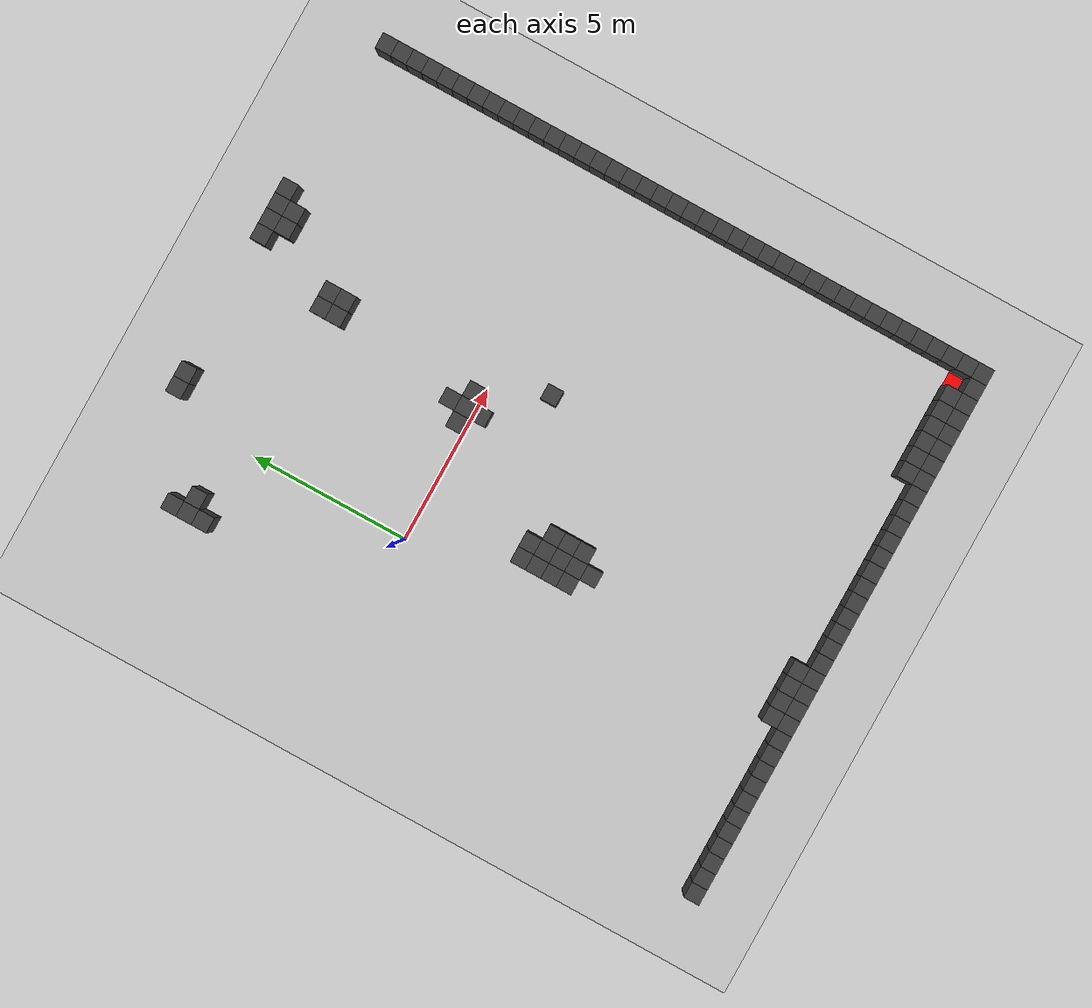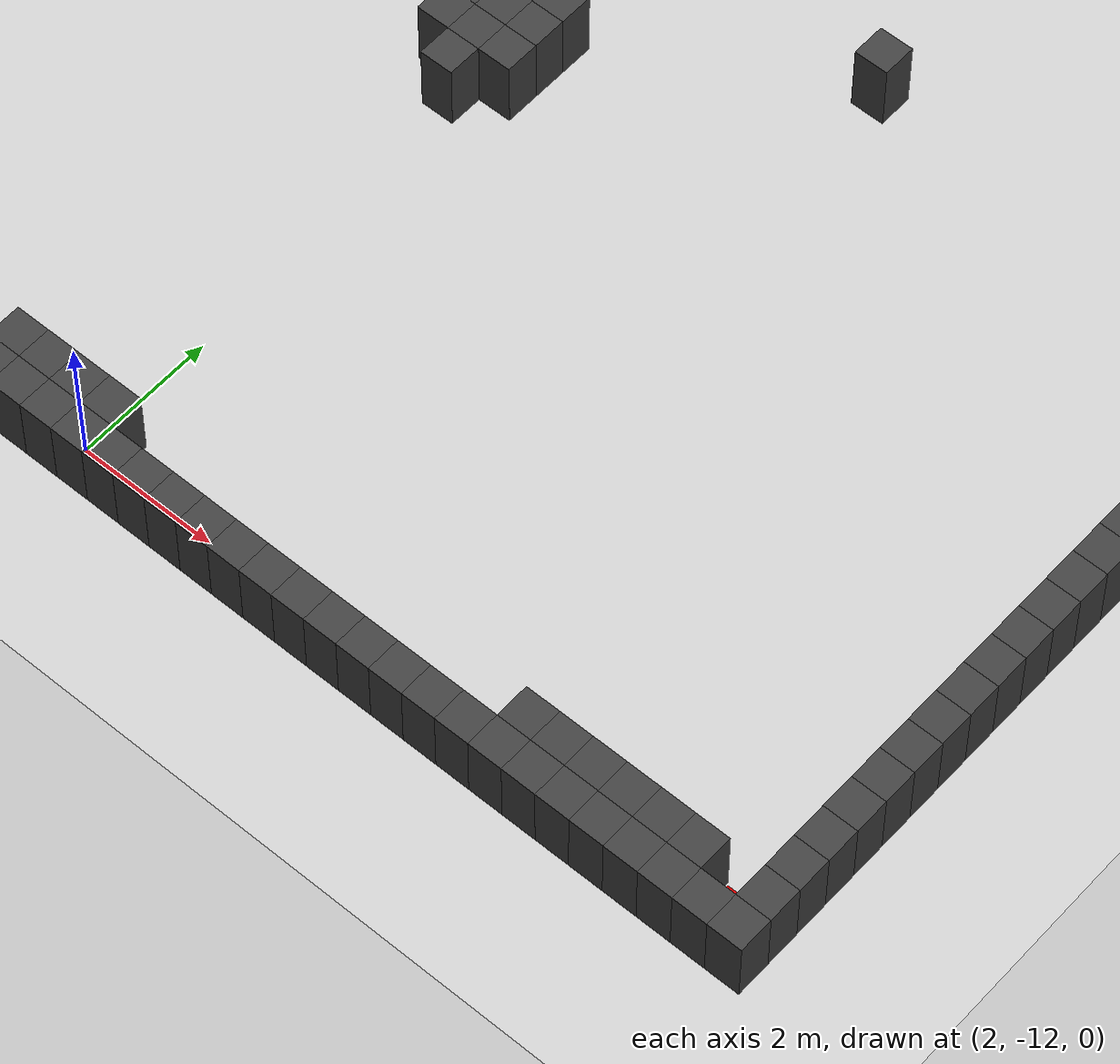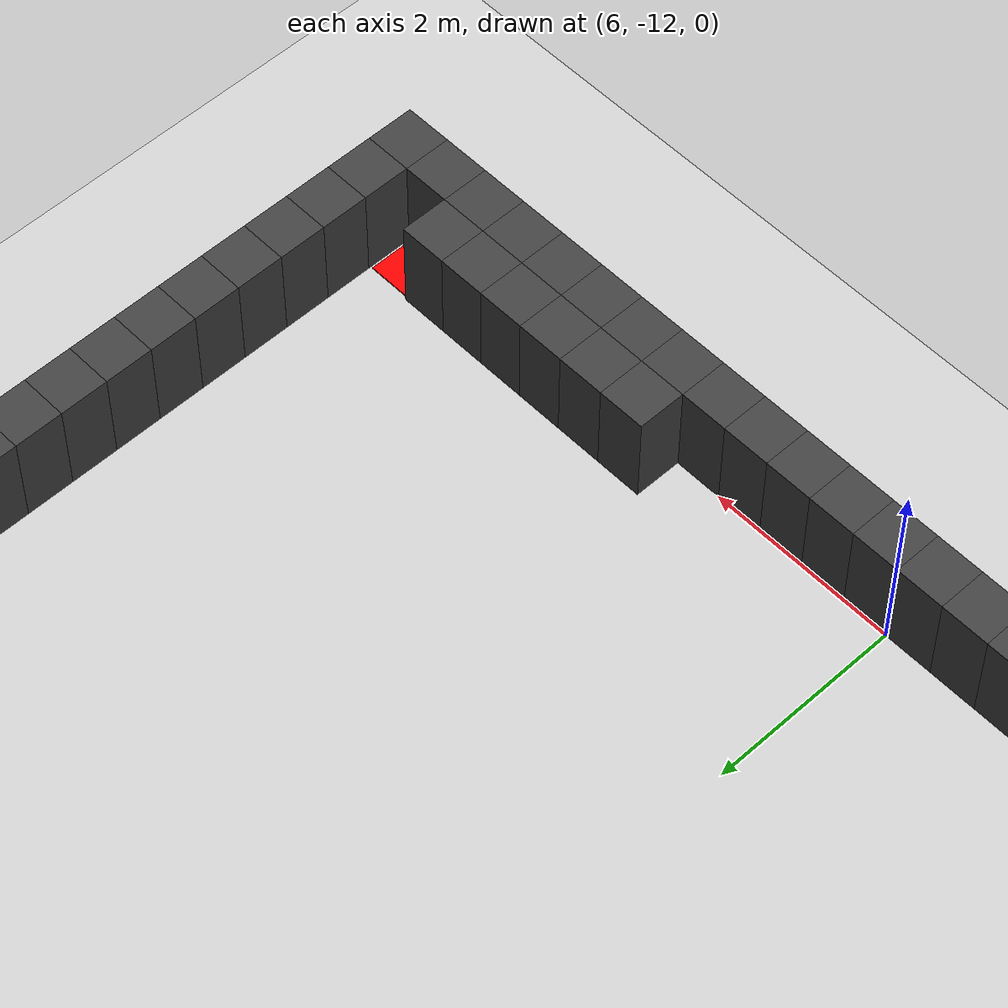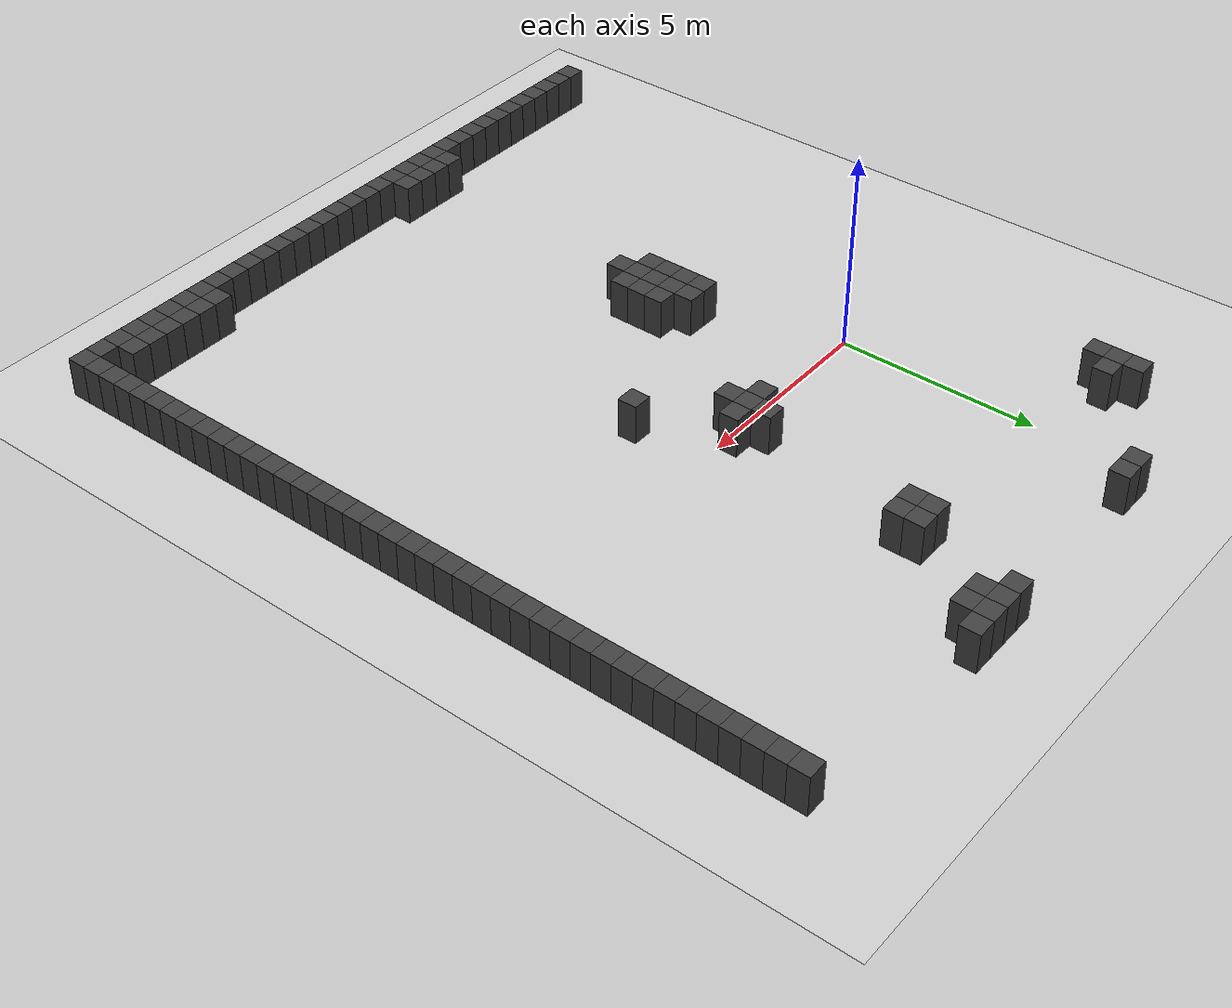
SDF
<sdf version="1.7">
 <world name="map_5837">
  <model name="ground_plane">
   <static>true</static>
   <link name="link">
    <collision name="collision">
     <geometry><plane><normal>0 0 1</normal><size>200 200</size></plane></geometry>
    </collision>
    <visual name="visual">
     <geometry><plane><normal>0 0 1</normal><size>200 200</size></plane></geometry>
     <material><ambient>0.8 0.8 0.8 1</ambient><diffuse>0.8 0.8 0.8 1</diffuse></material>
    </visual>
   </link>
  </model>
  <model name="maze_environment">
   <static>true</static>
   <link name="wall_169">
    <pose>0.750 7.750 0.500 0 0 0</pose>
    <collision name="col"><geometry><box><size>0.5 0.5 1.0</size></box></geometry></collision>
    <visual name="vis">
     <geometry><box><size>0.5 0.5 1.0</size></box></geometry>
     <material><ambient>0.15 0.15 0.15 1</ambient><diffuse>0.25 0.25 0.25 1</diffuse></material>
    </visual>
   </link>
   <link name="wall_170">
    <pose>1.250 7.750 0.500 0 0 0</pose>
    <collision name="col"><geometry><box><size>0.5 0.5 1.0</size></box></geometry></collision>
    <visual name="vis">
     <geometry><box><size>0.5 0.5 1.0</size></box></geometry>
     <material><ambient>0.15 0.15 0.15 1</ambient><diffuse>0.25 0.25 0.25 1</diffuse></material>
    </visual>
   </link>
   <link name="wall_171">
    <pose>5.750 7.750 0.500 0 0 0</pose>
    <collision name="col"><geometry><box><size>0.5 0.5 1.0</size></box></geometry></collision>
    <visual name="vis">
     <geometry><box><size>0.5 0.5 1.0</size></box></geometry>
     <material><ambient>0.15 0.15 0.15 1</ambient><diffuse>0.25 0.25 0.25 1</diffuse></material>
    </visual>
   </link>
   <link name="wall_172">
    <pose>6.250 7.750 0.500 0 0 0</pose>
    <collision name="col"><geometry><box><size>0.5 0.5 1.0</size></box></geometry></collision>
    <visual name="vis">
     <geometry><box><size>0.5 0.5 1.0</size></box></geometry>
     <material><ambient>0.15 0.15 0.15 1</ambient><diffuse>0.25 0.25 0.25 1</diffuse></material>
    </visual>
   </link>
   <link name="wall_173">
    <pose>6.750 7.750 0.500 0 0 0</pose>
    <collision name="col"><geometry><box><size>0.5 0.5 1.0</size></box></geometry></collision>
    <visual name="vis">
     <geometry><box><size>0.5 0.5 1.0</size></box></geometry>
     <material><ambient>0.15 0.15 0.15 1</ambient><diffuse>0.25 0.25 0.25 1</diffuse></material>
    </visual>
   </link>
   <link name="wall_174">
    <pose>7.250 7.750 0.500 0 0 0</pose>
    <collision name="col"><geometry><box><size>0.5 0.5 1.0</size></box></geometry></collision>
    <visual name="vis">
     <geometry><box><size>0.5 0.5 1.0</size></box></geometry>
     <material><ambient>0.15 0.15 0.15 1</ambient><diffuse>0.25 0.25 0.25 1</diffuse></material>
    </visual>
   </link>
   <link name="wall_177">
    <pose>6.250 7.250 0.500 0 0 0</pose>
    <collision name="col"><geometry><box><size>0.5 0.5 1.0</size></box></geometry></collision>
    <visual name="vis">
     <geometry><box><size>0.5 0.5 1.0</size></box></geometry>
     <material><ambient>0.15 0.15 0.15 1</ambient><diffuse>0.25 0.25 0.25 1</diffuse></material>
    </visual>
   </link>
   <link name="wall_178">
    <pose>6.750 7.250 0.500 0 0 0</pose>
    <collision name="col"><geometry><box><size>0.5 0.5 1.0</size></box></geometry></collision>
    <visual name="vis">
     <geometry><box><size>0.5 0.5 1.0</size></box></geometry>
     <material><ambient>0.15 0.15 0.15 1</ambient><diffuse>0.25 0.25 0.25 1</diffuse></material>
    </visual>
   </link>
   <link name="wall_179">
    <pose>12.250 7.250 0.500 0 0 0</pose>
    <collision name="col"><geometry><box><size>0.5 0.5 1.0</size></box></geometry></collision>
    <visual name="vis">
     <geometry><box><size>0.5 0.5 1.0</size></box></geometry>
     <material><ambient>0.15 0.15 0.15 1</ambient><diffuse>0.25 0.25 0.25 1</diffuse></material>
    </visual>
   </link>
   <link name="wall_181">
    <pose>12.250 6.750 0.500 0 0 0</pose>
    <collision name="col"><geometry><box><size>0.5 0.5 1.0</size></box></geometry></collision>
    <visual name="vis">
     <geometry><box><size>0.5 0.5 1.0</size></box></geometry>
     <material><ambient>0.15 0.15 0.15 1</ambient><diffuse>0.25 0.25 0.25 1</diffuse></material>
    </visual>
   </link>
   <link name="wall_183">
    <pose>-2.250 6.250 0.500 0 0 0</pose>
    <collision name="col"><geometry><box><size>0.5 0.5 1.0</size></box></geometry></collision>
    <visual name="vis">
     <geometry><box><size>0.5 0.5 1.0</size></box></geometry>
     <material><ambient>0.15 0.15 0.15 1</ambient><diffuse>0.25 0.25 0.25 1</diffuse></material>
    </visual>
   </link>
   <link name="wall_184">
    <pose>12.250 6.250 0.500 0 0 0</pose>
    <collision name="col"><geometry><box><size>0.5 0.5 1.0</size></box></geometry></collision>
    <visual name="vis">
     <geometry><box><size>0.5 0.5 1.0</size></box></geometry>
     <material><ambient>0.15 0.15 0.15 1</ambient><diffuse>0.25 0.25 0.25 1</diffuse></material>
    </visual>
   </link>
   <link name="wall_186">
    <pose>-2.250 5.750 0.500 0 0 0</pose>
    <collision name="col"><geometry><box><size>0.5 0.5 1.0</size></box></geometry></collision>
    <visual name="vis">
     <geometry><box><size>0.5 0.5 1.0</size></box></geometry>
     <material><ambient>0.15 0.15 0.15 1</ambient><diffuse>0.25 0.25 0.25 1</diffuse></material>
    </visual>
   </link>
   <link name="wall_187">
    <pose>-1.750 5.750 0.500 0 0 0</pose>
    <collision name="col"><geometry><box><size>0.5 0.5 1.0</size></box></geometry></collision>
    <visual name="vis">
     <geometry><box><size>0.5 0.5 1.0</size></box></geometry>
     <material><ambient>0.15 0.15 0.15 1</ambient><diffuse>0.25 0.25 0.25 1</diffuse></material>
    </visual>
   </link>
   <link name="wall_188">
    <pose>12.250 5.750 0.500 0 0 0</pose>
    <collision name="col"><geometry><box><size>0.5 0.5 1.0</size></box></geometry></collision>
    <visual name="vis">
     <geometry><box><size>0.5 0.5 1.0</size></box></geometry>
     <material><ambient>0.15 0.15 0.15 1</ambient><diffuse>0.25 0.25 0.25 1</diffuse></material>
    </visual>
   </link>
   <link name="wall_190">
    <pose>-2.250 5.250 0.500 0 0 0</pose>
    <collision name="col"><geometry><box><size>0.5 0.5 1.0</size></box></geometry></collision>
    <visual name="vis">
     <geometry><box><size>0.5 0.5 1.0</size></box></geometry>
     <material><ambient>0.15 0.15 0.15 1</ambient><diffuse>0.25 0.25 0.25 1</diffuse></material>
    </visual>
   </link>
   <link name="wall_191">
    <pose>4.750 5.250 0.500 0 0 0</pose>
    <collision name="col"><geometry><box><size>0.5 0.5 1.0</size></box></geometry></collision>
    <visual name="vis">
     <geometry><box><size>0.5 0.5 1.0</size></box></geometry>
     <material><ambient>0.15 0.15 0.15 1</ambient><diffuse>0.25 0.25 0.25 1</diffuse></material>
    </visual>
   </link>
   <link name="wall_192">
    <pose>5.250 5.250 0.500 0 0 0</pose>
    <collision name="col"><geometry><box><size>0.5 0.5 1.0</size></box></geometry></collision>
    <visual name="vis">
     <geometry><box><size>0.5 0.5 1.0</size></box></geometry>
     <material><ambient>0.15 0.15 0.15 1</ambient><diffuse>0.25 0.25 0.25 1</diffuse></material>
    </visual>
   </link>
   <link name="wall_193">
    <pose>12.250 5.250 0.500 0 0 0</pose>
    <collision name="col"><geometry><box><size>0.5 0.5 1.0</size></box></geometry></collision>
    <visual name="vis">
     <geometry><box><size>0.5 0.5 1.0</size></box></geometry>
     <material><ambient>0.15 0.15 0.15 1</ambient><diffuse>0.25 0.25 0.25 1</diffuse></material>
    </visual>
   </link>
   <link name="wall_195">
    <pose>4.750 4.750 0.500 0 0 0</pose>
    <collision name="col"><geometry><box><size>0.5 0.5 1.0</size></box></geometry></collision>
    <visual name="vis">
     <geometry><box><size>0.5 0.5 1.0</size></box></geometry>
     <material><ambient>0.15 0.15 0.15 1</ambient><diffuse>0.25 0.25 0.25 1</diffuse></material>
    </visual>
   </link>
   <link name="wall_196">
    <pose>5.250 4.750 0.500 0 0 0</pose>
    <collision name="col"><geometry><box><size>0.5 0.5 1.0</size></box></geometry></collision>
    <visual name="vis">
     <geometry><box><size>0.5 0.5 1.0</size></box></geometry>
     <material><ambient>0.15 0.15 0.15 1</ambient><diffuse>0.25 0.25 0.25 1</diffuse></material>
    </visual>
   </link>
   <link name="wall_197">
    <pose>12.250 4.750 0.500 0 0 0</pose>
    <collision name="col"><geometry><box><size>0.5 0.5 1.0</size></box></geometry></collision>
    <visual name="vis">
     <geometry><box><size>0.5 0.5 1.0</size></box></geometry>
     <material><ambient>0.15 0.15 0.15 1</ambient><diffuse>0.25 0.25 0.25 1</diffuse></material>
    </visual>
   </link>
   <link name="wall_199">
    <pose>12.250 4.250 0.500 0 0 0</pose>
    <collision name="col"><geometry><box><size>0.5 0.5 1.0</size></box></geometry></collision>
    <visual name="vis">
     <geometry><box><size>0.5 0.5 1.0</size></box></geometry>
     <material><ambient>0.15 0.15 0.15 1</ambient><diffuse>0.25 0.25 0.25 1</diffuse></material>
    </visual>
   </link>
   <link name="wall_201">
    <pose>12.250 3.750 0.500 0 0 0</pose>
    <collision name="col"><geometry><box><size>0.5 0.5 1.0</size></box></geometry></collision>
    <visual name="vis">
     <geometry><box><size>0.5 0.5 1.0</size></box></geometry>
     <material><ambient>0.15 0.15 0.15 1</ambient><diffuse>0.25 0.25 0.25 1</diffuse></material>
    </visual>
   </link>
   <link name="wall_203">
    <pose>12.250 3.250 0.500 0 0 0</pose>
    <collision name="col"><geometry><box><size>0.5 0.5 1.0</size></box></geometry></collision>
    <visual name="vis">
     <geometry><box><size>0.5 0.5 1.0</size></box></geometry>
     <material><ambient>0.15 0.15 0.15 1</ambient><diffuse>0.25 0.25 0.25 1</diffuse></material>
    </visual>
   </link>
   <link name="wall_205">
    <pose>12.250 2.750 0.500 0 0 0</pose>
    <collision name="col"><geometry><box><size>0.5 0.5 1.0</size></box></geometry></collision>
    <visual name="vis">
     <geometry><box><size>0.5 0.5 1.0</size></box></geometry>
     <material><ambient>0.15 0.15 0.15 1</ambient><diffuse>0.25 0.25 0.25 1</diffuse></material>
    </visual>
   </link>
   <link name="wall_207">
    <pose>12.250 2.250 0.500 0 0 0</pose>
    <collision name="col"><geometry><box><size>0.5 0.5 1.0</size></box></geometry></collision>
    <visual name="vis">
     <geometry><box><size>0.5 0.5 1.0</size></box></geometry>
     <material><ambient>0.15 0.15 0.15 1</ambient><diffuse>0.25 0.25 0.25 1</diffuse></material>
    </visual>
   </link>
   <link name="wall_209">
    <pose>12.250 1.750 0.500 0 0 0</pose>
    <collision name="col"><geometry><box><size>0.5 0.5 1.0</size></box></geometry></collision>
    <visual name="vis">
     <geometry><box><size>0.5 0.5 1.0</size></box></geometry>
     <material><ambient>0.15 0.15 0.15 1</ambient><diffuse>0.25 0.25 0.25 1</diffuse></material>
    </visual>
   </link>
   <link name="wall_211">
    <pose>12.250 1.250 0.500 0 0 0</pose>
    <collision name="col"><geometry><box><size>0.5 0.5 1.0</size></box></geometry></collision>
    <visual name="vis">
     <geometry><box><size>0.5 0.5 1.0</size></box></geometry>
     <material><ambient>0.15 0.15 0.15 1</ambient><diffuse>0.25 0.25 0.25 1</diffuse></material>
    </visual>
   </link>
   <link name="wall_213">
    <pose>4.250 0.750 0.500 0 0 0</pose>
    <collision name="col"><geometry><box><size>0.5 0.5 1.0</size></box></geometry></collision>
    <visual name="vis">
     <geometry><box><size>0.5 0.5 1.0</size></box></geometry>
     <material><ambient>0.15 0.15 0.15 1</ambient><diffuse>0.25 0.25 0.25 1</diffuse></material>
    </visual>
   </link>
   <link name="wall_214">
    <pose>12.250 0.750 0.500 0 0 0</pose>
    <collision name="col"><geometry><box><size>0.5 0.5 1.0</size></box></geometry></collision>
    <visual name="vis">
     <geometry><box><size>0.5 0.5 1.0</size></box></geometry>
     <material><ambient>0.15 0.15 0.15 1</ambient><diffuse>0.25 0.25 0.25 1</diffuse></material>
    </visual>
   </link>
   <link name="wall_216">
    <pose>3.750 0.250 0.500 0 0 0</pose>
    <collision name="col"><geometry><box><size>0.5 0.5 1.0</size></box></geometry></collision>
    <visual name="vis">
     <geometry><box><size>0.5 0.5 1.0</size></box></geometry>
     <material><ambient>0.15 0.15 0.15 1</ambient><diffuse>0.25 0.25 0.25 1</diffuse></material>
    </visual>
   </link>
   <link name="wall_217">
    <pose>4.250 0.250 0.500 0 0 0</pose>
    <collision name="col"><geometry><box><size>0.5 0.5 1.0</size></box></geometry></collision>
    <visual name="vis">
     <geometry><box><size>0.5 0.5 1.0</size></box></geometry>
     <material><ambient>0.15 0.15 0.15 1</ambient><diffuse>0.25 0.25 0.25 1</diffuse></material>
    </visual>
   </link>
   <link name="wall_218">
    <pose>4.750 0.250 0.500 0 0 0</pose>
    <collision name="col"><geometry><box><size>0.5 0.5 1.0</size></box></geometry></collision>
    <visual name="vis">
     <geometry><box><size>0.5 0.5 1.0</size></box></geometry>
     <material><ambient>0.15 0.15 0.15 1</ambient><diffuse>0.25 0.25 0.25 1</diffuse></material>
    </visual>
   </link>
   <link name="wall_219">
    <pose>12.250 0.250 0.500 0 0 0</pose>
    <collision name="col"><geometry><box><size>0.5 0.5 1.0</size></box></geometry></collision>
    <visual name="vis">
     <geometry><box><size>0.5 0.5 1.0</size></box></geometry>
     <material><ambient>0.15 0.15 0.15 1</ambient><diffuse>0.25 0.25 0.25 1</diffuse></material>
    </visual>
   </link>
   <link name="wall_221">
    <pose>4.250 -0.250 0.500 0 0 0</pose>
    <collision name="col"><geometry><box><size>0.5 0.5 1.0</size></box></geometry></collision>
    <visual name="vis">
     <geometry><box><size>0.5 0.5 1.0</size></box></geometry>
     <material><ambient>0.15 0.15 0.15 1</ambient><diffuse>0.25 0.25 0.25 1</diffuse></material>
    </visual>
   </link>
   <link name="wall_222">
    <pose>12.250 -0.250 0.500 0 0 0</pose>
    <collision name="col"><geometry><box><size>0.5 0.5 1.0</size></box></geometry></collision>
    <visual name="vis">
     <geometry><box><size>0.5 0.5 1.0</size></box></geometry>
     <material><ambient>0.15 0.15 0.15 1</ambient><diffuse>0.25 0.25 0.25 1</diffuse></material>
    </visual>
   </link>
   <link name="wall_224">
    <pose>12.250 -0.750 0.500 0 0 0</pose>
    <collision name="col"><geometry><box><size>0.5 0.5 1.0</size></box></geometry></collision>
    <visual name="vis">
     <geometry><box><size>0.5 0.5 1.0</size></box></geometry>
     <material><ambient>0.15 0.15 0.15 1</ambient><diffuse>0.25 0.25 0.25 1</diffuse></material>
    </visual>
   </link>
   <link name="wall_226">
    <pose>12.250 -1.250 0.500 0 0 0</pose>
    <collision name="col"><geometry><box><size>0.5 0.5 1.0</size></box></geometry></collision>
    <visual name="vis">
     <geometry><box><size>0.5 0.5 1.0</size></box></geometry>
     <material><ambient>0.15 0.15 0.15 1</ambient><diffuse>0.25 0.25 0.25 1</diffuse></material>
    </visual>
   </link>
   <link name="wall_228">
    <pose>5.750 -1.750 0.500 0 0 0</pose>
    <collision name="col"><geometry><box><size>0.5 0.5 1.0</size></box></geometry></collision>
    <visual name="vis">
     <geometry><box><size>0.5 0.5 1.0</size></box></geometry>
     <material><ambient>0.15 0.15 0.15 1</ambient><diffuse>0.25 0.25 0.25 1</diffuse></material>
    </visual>
   </link>
   <link name="wall_229">
    <pose>12.250 -1.750 0.500 0 0 0</pose>
    <collision name="col"><geometry><box><size>0.5 0.5 1.0</size></box></geometry></collision>
    <visual name="vis">
     <geometry><box><size>0.5 0.5 1.0</size></box></geometry>
     <material><ambient>0.15 0.15 0.15 1</ambient><diffuse>0.25 0.25 0.25 1</diffuse></material>
    </visual>
   </link>
   <link name="wall_231">
    <pose>12.250 -2.250 0.500 0 0 0</pose>
    <collision name="col"><geometry><box><size>0.5 0.5 1.0</size></box></geometry></collision>
    <visual name="vis">
     <geometry><box><size>0.5 0.5 1.0</size></box></geometry>
     <material><ambient>0.15 0.15 0.15 1</ambient><diffuse>0.25 0.25 0.25 1</diffuse></material>
    </visual>
   </link>
   <link name="wall_233">
    <pose>12.250 -2.750 0.500 0 0 0</pose>
    <collision name="col"><geometry><box><size>0.5 0.5 1.0</size></box></geometry></collision>
    <visual name="vis">
     <geometry><box><size>0.5 0.5 1.0</size></box></geometry>
     <material><ambient>0.15 0.15 0.15 1</ambient><diffuse>0.25 0.25 0.25 1</diffuse></material>
    </visual>
   </link>
   <link name="wall_235">
    <pose>1.250 -3.250 0.500 0 0 0</pose>
    <collision name="col"><geometry><box><size>0.5 0.5 1.0</size></box></geometry></collision>
    <visual name="vis">
     <geometry><box><size>0.5 0.5 1.0</size></box></geometry>
     <material><ambient>0.15 0.15 0.15 1</ambient><diffuse>0.25 0.25 0.25 1</diffuse></material>
    </visual>
   </link>
   <link name="wall_236">
    <pose>1.750 -3.250 0.500 0 0 0</pose>
    <collision name="col"><geometry><box><size>0.5 0.5 1.0</size></box></geometry></collision>
    <visual name="vis">
     <geometry><box><size>0.5 0.5 1.0</size></box></geometry>
     <material><ambient>0.15 0.15 0.15 1</ambient><diffuse>0.25 0.25 0.25 1</diffuse></material>
    </visual>
   </link>
   <link name="wall_237">
    <pose>12.250 -3.250 0.500 0 0 0</pose>
    <collision name="col"><geometry><box><size>0.5 0.5 1.0</size></box></geometry></collision>
    <visual name="vis">
     <geometry><box><size>0.5 0.5 1.0</size></box></geometry>
     <material><ambient>0.15 0.15 0.15 1</ambient><diffuse>0.25 0.25 0.25 1</diffuse></material>
    </visual>
   </link>
   <link name="wall_239">
    <pose>1.250 -3.750 0.500 0 0 0</pose>
    <collision name="col"><geometry><box><size>0.5 0.5 1.0</size></box></geometry></collision>
    <visual name="vis">
     <geometry><box><size>0.5 0.5 1.0</size></box></geometry>
     <material><ambient>0.15 0.15 0.15 1</ambient><diffuse>0.25 0.25 0.25 1</diffuse></material>
    </visual>
   </link>
   <link name="wall_240">
    <pose>1.750 -3.750 0.500 0 0 0</pose>
    <collision name="col"><geometry><box><size>0.5 0.5 1.0</size></box></geometry></collision>
    <visual name="vis">
     <geometry><box><size>0.5 0.5 1.0</size></box></geometry>
     <material><ambient>0.15 0.15 0.15 1</ambient><diffuse>0.25 0.25 0.25 1</diffuse></material>
    </visual>
   </link>
   <link name="wall_241">
    <pose>2.250 -3.750 0.500 0 0 0</pose>
    <collision name="col"><geometry><box><size>0.5 0.5 1.0</size></box></geometry></collision>
    <visual name="vis">
     <geometry><box><size>0.5 0.5 1.0</size></box></geometry>
     <material><ambient>0.15 0.15 0.15 1</ambient><diffuse>0.25 0.25 0.25 1</diffuse></material>
    </visual>
   </link>
   <link name="wall_242">
    <pose>12.250 -3.750 0.500 0 0 0</pose>
    <collision name="col"><geometry><box><size>0.5 0.5 1.0</size></box></geometry></collision>
    <visual name="vis">
     <geometry><box><size>0.5 0.5 1.0</size></box></geometry>
     <material><ambient>0.15 0.15 0.15 1</ambient><diffuse>0.25 0.25 0.25 1</diffuse></material>
    </visual>
   </link>
   <link name="wall_244">
    <pose>1.250 -4.250 0.500 0 0 0</pose>
    <collision name="col"><geometry><box><size>0.5 0.5 1.0</size></box></geometry></collision>
    <visual name="vis">
     <geometry><box><size>0.5 0.5 1.0</size></box></geometry>
     <material><ambient>0.15 0.15 0.15 1</ambient><diffuse>0.25 0.25 0.25 1</diffuse></material>
    </visual>
   </link>
   <link name="wall_245">
    <pose>1.750 -4.250 0.500 0 0 0</pose>
    <collision name="col"><geometry><box><size>0.5 0.5 1.0</size></box></geometry></collision>
    <visual name="vis">
     <geometry><box><size>0.5 0.5 1.0</size></box></geometry>
     <material><ambient>0.15 0.15 0.15 1</ambient><diffuse>0.25 0.25 0.25 1</diffuse></material>
    </visual>
   </link>
   <link name="wall_246">
    <pose>2.250 -4.250 0.500 0 0 0</pose>
    <collision name="col"><geometry><box><size>0.5 0.5 1.0</size></box></geometry></collision>
    <visual name="vis">
     <geometry><box><size>0.5 0.5 1.0</size></box></geometry>
     <material><ambient>0.15 0.15 0.15 1</ambient><diffuse>0.25 0.25 0.25 1</diffuse></material>
    </visual>
   </link>
   <link name="wall_247">
    <pose>12.250 -4.250 0.500 0 0 0</pose>
    <collision name="col"><geometry><box><size>0.5 0.5 1.0</size></box></geometry></collision>
    <visual name="vis">
     <geometry><box><size>0.5 0.5 1.0</size></box></geometry>
     <material><ambient>0.15 0.15 0.15 1</ambient><diffuse>0.25 0.25 0.25 1</diffuse></material>
    </visual>
   </link>
   <link name="wall_249">
    <pose>1.250 -4.750 0.500 0 0 0</pose>
    <collision name="col"><geometry><box><size>0.5 0.5 1.0</size></box></geometry></collision>
    <visual name="vis">
     <geometry><box><size>0.5 0.5 1.0</size></box></geometry>
     <material><ambient>0.15 0.15 0.15 1</ambient><diffuse>0.25 0.25 0.25 1</diffuse></material>
    </visual>
   </link>
   <link name="wall_250">
    <pose>1.750 -4.750 0.500 0 0 0</pose>
    <collision name="col"><geometry><box><size>0.5 0.5 1.0</size></box></geometry></collision>
    <visual name="vis">
     <geometry><box><size>0.5 0.5 1.0</size></box></geometry>
     <material><ambient>0.15 0.15 0.15 1</ambient><diffuse>0.25 0.25 0.25 1</diffuse></material>
    </visual>
   </link>
   <link name="wall_251">
    <pose>2.250 -4.750 0.500 0 0 0</pose>
    <collision name="col"><geometry><box><size>0.5 0.5 1.0</size></box></geometry></collision>
    <visual name="vis">
     <geometry><box><size>0.5 0.5 1.0</size></box></geometry>
     <material><ambient>0.15 0.15 0.15 1</ambient><diffuse>0.25 0.25 0.25 1</diffuse></material>
    </visual>
   </link>
   <link name="wall_252">
    <pose>12.250 -4.750 0.500 0 0 0</pose>
    <collision name="col"><geometry><box><size>0.5 0.5 1.0</size></box></geometry></collision>
    <visual name="vis">
     <geometry><box><size>0.5 0.5 1.0</size></box></geometry>
     <material><ambient>0.15 0.15 0.15 1</ambient><diffuse>0.25 0.25 0.25 1</diffuse></material>
    </visual>
   </link>
   <link name="wall_255">
    <pose>1.750 -5.250 0.500 0 0 0</pose>
    <collision name="col"><geometry><box><size>0.5 0.5 1.0</size></box></geometry></collision>
    <visual name="vis">
     <geometry><box><size>0.5 0.5 1.0</size></box></geometry>
     <material><ambient>0.15 0.15 0.15 1</ambient><diffuse>0.25 0.25 0.25 1</diffuse></material>
    </visual>
   </link>
   <link name="wall_256">
    <pose>12.250 -5.250 0.500 0 0 0</pose>
    <collision name="col"><geometry><box><size>0.5 0.5 1.0</size></box></geometry></collision>
    <visual name="vis">
     <geometry><box><size>0.5 0.5 1.0</size></box></geometry>
     <material><ambient>0.15 0.15 0.15 1</ambient><diffuse>0.25 0.25 0.25 1</diffuse></material>
    </visual>
   </link>
   <link name="wall_260">
    <pose>12.250 -5.750 0.500 0 0 0</pose>
    <collision name="col"><geometry><box><size>0.5 0.5 1.0</size></box></geometry></collision>
    <visual name="vis">
     <geometry><box><size>0.5 0.5 1.0</size></box></geometry>
     <material><ambient>0.15 0.15 0.15 1</ambient><diffuse>0.25 0.25 0.25 1</diffuse></material>
    </visual>
   </link>
   <link name="wall_265">
    <pose>12.250 -6.250 0.500 0 0 0</pose>
    <collision name="col"><geometry><box><size>0.5 0.5 1.0</size></box></geometry></collision>
    <visual name="vis">
     <geometry><box><size>0.5 0.5 1.0</size></box></geometry>
     <material><ambient>0.15 0.15 0.15 1</ambient><diffuse>0.25 0.25 0.25 1</diffuse></material>
    </visual>
   </link>
   <link name="wall_271">
    <pose>12.250 -6.750 0.500 0 0 0</pose>
    <collision name="col"><geometry><box><size>0.5 0.5 1.0</size></box></geometry></collision>
    <visual name="vis">
     <geometry><box><size>0.5 0.5 1.0</size></box></geometry>
     <material><ambient>0.15 0.15 0.15 1</ambient><diffuse>0.25 0.25 0.25 1</diffuse></material>
    </visual>
   </link>
   <link name="wall_275">
    <pose>12.250 -7.250 0.500 0 0 0</pose>
    <collision name="col"><geometry><box><size>0.5 0.5 1.0</size></box></geometry></collision>
    <visual name="vis">
     <geometry><box><size>0.5 0.5 1.0</size></box></geometry>
     <material><ambient>0.15 0.15 0.15 1</ambient><diffuse>0.25 0.25 0.25 1</diffuse></material>
    </visual>
   </link>
   <link name="wall_277">
    <pose>12.250 -7.750 0.500 0 0 0</pose>
    <collision name="col"><geometry><box><size>0.5 0.5 1.0</size></box></geometry></collision>
    <visual name="vis">
     <geometry><box><size>0.5 0.5 1.0</size></box></geometry>
     <material><ambient>0.15 0.15 0.15 1</ambient><diffuse>0.25 0.25 0.25 1</diffuse></material>
    </visual>
   </link>
   <link name="wall_279">
    <pose>12.250 -8.250 0.500 0 0 0</pose>
    <collision name="col"><geometry><box><size>0.5 0.5 1.0</size></box></geometry></collision>
    <visual name="vis">
     <geometry><box><size>0.5 0.5 1.0</size></box></geometry>
     <material><ambient>0.15 0.15 0.15 1</ambient><diffuse>0.25 0.25 0.25 1</diffuse></material>
    </visual>
   </link>
   <link name="wall_281">
    <pose>12.250 -8.750 0.500 0 0 0</pose>
    <collision name="col"><geometry><box><size>0.5 0.5 1.0</size></box></geometry></collision>
    <visual name="vis">
     <geometry><box><size>0.5 0.5 1.0</size></box></geometry>
     <material><ambient>0.15 0.15 0.15 1</ambient><diffuse>0.25 0.25 0.25 1</diffuse></material>
    </visual>
   </link>
   <link name="wall_283">
    <pose>12.250 -9.250 0.500 0 0 0</pose>
    <collision name="col"><geometry><box><size>0.5 0.5 1.0</size></box></geometry></collision>
    <visual name="vis">
     <geometry><box><size>0.5 0.5 1.0</size></box></geometry>
     <material><ambient>0.15 0.15 0.15 1</ambient><diffuse>0.25 0.25 0.25 1</diffuse></material>
    </visual>
   </link>
   <link name="wall_285">
    <pose>12.250 -9.750 0.500 0 0 0</pose>
    <collision name="col"><geometry><box><size>0.5 0.5 1.0</size></box></geometry></collision>
    <visual name="vis">
     <geometry><box><size>0.5 0.5 1.0</size></box></geometry>
     <material><ambient>0.15 0.15 0.15 1</ambient><diffuse>0.25 0.25 0.25 1</diffuse></material>
    </visual>
   </link>
   <link name="wall_287">
    <pose>12.250 -10.250 0.500 0 0 0</pose>
    <collision name="col"><geometry><box><size>0.5 0.5 1.0</size></box></geometry></collision>
    <visual name="vis">
     <geometry><box><size>0.5 0.5 1.0</size></box></geometry>
     <material><ambient>0.15 0.15 0.15 1</ambient><diffuse>0.25 0.25 0.25 1</diffuse></material>
    </visual>
   </link>
   <link name="wall_289">
    <pose>12.250 -10.750 0.500 0 0 0</pose>
    <collision name="col"><geometry><box><size>0.5 0.5 1.0</size></box></geometry></collision>
    <visual name="vis">
     <geometry><box><size>0.5 0.5 1.0</size></box></geometry>
     <material><ambient>0.15 0.15 0.15 1</ambient><diffuse>0.25 0.25 0.25 1</diffuse></material>
    </visual>
   </link>
   <link name="wall_291">
    <pose>12.250 -11.250 0.500 0 0 0</pose>
    <collision name="col"><geometry><box><size>0.5 0.5 1.0</size></box></geometry></collision>
    <visual name="vis">
     <geometry><box><size>0.5 0.5 1.0</size></box></geometry>
     <material><ambient>0.15 0.15 0.15 1</ambient><diffuse>0.25 0.25 0.25 1</diffuse></material>
    </visual>
   </link>
   <link name="wall_293">
    <pose>0.750 -11.750 0.500 0 0 0</pose>
    <collision name="col"><geometry><box><size>0.5 0.5 1.0</size></box></geometry></collision>
    <visual name="vis">
     <geometry><box><size>0.5 0.5 1.0</size></box></geometry>
     <material><ambient>0.15 0.15 0.15 1</ambient><diffuse>0.25 0.25 0.25 1</diffuse></material>
    </visual>
   </link>
   <link name="wall_294">
    <pose>1.250 -11.750 0.500 0 0 0</pose>
    <collision name="col"><geometry><box><size>0.5 0.5 1.0</size></box></geometry></collision>
    <visual name="vis">
     <geometry><box><size>0.5 0.5 1.0</size></box></geometry>
     <material><ambient>0.15 0.15 0.15 1</ambient><diffuse>0.25 0.25 0.25 1</diffuse></material>
    </visual>
   </link>
   <link name="wall_295">
    <pose>1.750 -11.750 0.500 0 0 0</pose>
    <collision name="col"><geometry><box><size>0.5 0.5 1.0</size></box></geometry></collision>
    <visual name="vis">
     <geometry><box><size>0.5 0.5 1.0</size></box></geometry>
     <material><ambient>0.15 0.15 0.15 1</ambient><diffuse>0.25 0.25 0.25 1</diffuse></material>
    </visual>
   </link>
   <link name="wall_296">
    <pose>2.250 -11.750 0.500 0 0 0</pose>
    <collision name="col"><geometry><box><size>0.5 0.5 1.0</size></box></geometry></collision>
    <visual name="vis">
     <geometry><box><size>0.5 0.5 1.0</size></box></geometry>
     <material><ambient>0.15 0.15 0.15 1</ambient><diffuse>0.25 0.25 0.25 1</diffuse></material>
    </visual>
   </link>
   <link name="wall_297">
    <pose>8.750 -11.750 0.500 0 0 0</pose>
    <collision name="col"><geometry><box><size>0.5 0.5 1.0</size></box></geometry></collision>
    <visual name="vis">
     <geometry><box><size>0.5 0.5 1.0</size></box></geometry>
     <material><ambient>0.15 0.15 0.15 1</ambient><diffuse>0.25 0.25 0.25 1</diffuse></material>
    </visual>
   </link>
   <link name="wall_298">
    <pose>9.250 -11.750 0.500 0 0 0</pose>
    <collision name="col"><geometry><box><size>0.5 0.5 1.0</size></box></geometry></collision>
    <visual name="vis">
     <geometry><box><size>0.5 0.5 1.0</size></box></geometry>
     <material><ambient>0.15 0.15 0.15 1</ambient><diffuse>0.25 0.25 0.25 1</diffuse></material>
    </visual>
   </link>
   <link name="wall_299">
    <pose>9.750 -11.750 0.500 0 0 0</pose>
    <collision name="col"><geometry><box><size>0.5 0.5 1.0</size></box></geometry></collision>
    <visual name="vis">
     <geometry><box><size>0.5 0.5 1.0</size></box></geometry>
     <material><ambient>0.15 0.15 0.15 1</ambient><diffuse>0.25 0.25 0.25 1</diffuse></material>
    </visual>
   </link>
   <link name="wall_300">
    <pose>10.250 -11.750 0.500 0 0 0</pose>
    <collision name="col"><geometry><box><size>0.5 0.5 1.0</size></box></geometry></collision>
    <visual name="vis">
     <geometry><box><size>0.5 0.5 1.0</size></box></geometry>
     <material><ambient>0.15 0.15 0.15 1</ambient><diffuse>0.25 0.25 0.25 1</diffuse></material>
    </visual>
   </link>
   <link name="wall_301">
    <pose>10.750 -11.750 0.500 0 0 0</pose>
    <collision name="col"><geometry><box><size>0.5 0.5 1.0</size></box></geometry></collision>
    <visual name="vis">
     <geometry><box><size>0.5 0.5 1.0</size></box></geometry>
     <material><ambient>0.15 0.15 0.15 1</ambient><diffuse>0.25 0.25 0.25 1</diffuse></material>
    </visual>
   </link>
   <link name="wall_302">
    <pose>11.250 -11.750 0.500 0 0 0</pose>
    <collision name="col"><geometry><box><size>0.5 0.5 1.0</size></box></geometry></collision>
    <visual name="vis">
     <geometry><box><size>0.5 0.5 1.0</size></box></geometry>
     <material><ambient>0.15 0.15 0.15 1</ambient><diffuse>0.25 0.25 0.25 1</diffuse></material>
    </visual>
   </link>
   <link name="wall_303">
    <pose>12.250 -11.750 0.500 0 0 0</pose>
    <collision name="col"><geometry><box><size>0.5 0.5 1.0</size></box></geometry></collision>
    <visual name="vis">
     <geometry><box><size>0.5 0.5 1.0</size></box></geometry>
     <material><ambient>0.15 0.15 0.15 1</ambient><diffuse>0.25 0.25 0.25 1</diffuse></material>
    </visual>
   </link>
   <link name="wall_319">
    <pose>-4.750 -12.250 0.500 0 0 0</pose>
    <collision name="col"><geometry><box><size>0.5 0.5 1.0</size></box></geometry></collision>
    <visual name="vis">
     <geometry><box><size>0.5 0.5 1.0</size></box></geometry>
     <material><ambient>0.15 0.15 0.15 1</ambient><diffuse>0.25 0.25 0.25 1</diffuse></material>
    </visual>
   </link>
   <link name="wall_320">
    <pose>-4.250 -12.250 0.500 0 0 0</pose>
    <collision name="col"><geometry><box><size>0.5 0.5 1.0</size></box></geometry></collision>
    <visual name="vis">
     <geometry><box><size>0.5 0.5 1.0</size></box></geometry>
     <material><ambient>0.15 0.15 0.15 1</ambient><diffuse>0.25 0.25 0.25 1</diffuse></material>
    </visual>
   </link>
   <link name="wall_321">
    <pose>-3.750 -12.250 0.500 0 0 0</pose>
    <collision name="col"><geometry><box><size>0.5 0.5 1.0</size></box></geometry></collision>
    <visual name="vis">
     <geometry><box><size>0.5 0.5 1.0</size></box></geometry>
     <material><ambient>0.15 0.15 0.15 1</ambient><diffuse>0.25 0.25 0.25 1</diffuse></material>
    </visual>
   </link>
   <link name="wall_322">
    <pose>-3.250 -12.250 0.500 0 0 0</pose>
    <collision name="col"><geometry><box><size>0.5 0.5 1.0</size></box></geometry></collision>
    <visual name="vis">
     <geometry><box><size>0.5 0.5 1.0</size></box></geometry>
     <material><ambient>0.15 0.15 0.15 1</ambient><diffuse>0.25 0.25 0.25 1</diffuse></material>
    </visual>
   </link>
   <link name="wall_323">
    <pose>-2.750 -12.250 0.500 0 0 0</pose>
    <collision name="col"><geometry><box><size>0.5 0.5 1.0</size></box></geometry></collision>
    <visual name="vis">
     <geometry><box><size>0.5 0.5 1.0</size></box></geometry>
     <material><ambient>0.15 0.15 0.15 1</ambient><diffuse>0.25 0.25 0.25 1</diffuse></material>
    </visual>
   </link>
   <link name="wall_324">
    <pose>-2.250 -12.250 0.500 0 0 0</pose>
    <collision name="col"><geometry><box><size>0.5 0.5 1.0</size></box></geometry></collision>
    <visual name="vis">
     <geometry><box><size>0.5 0.5 1.0</size></box></geometry>
     <material><ambient>0.15 0.15 0.15 1</ambient><diffuse>0.25 0.25 0.25 1</diffuse></material>
    </visual>
   </link>
   <link name="wall_325">
    <pose>-1.750 -12.250 0.500 0 0 0</pose>
    <collision name="col"><geometry><box><size>0.5 0.5 1.0</size></box></geometry></collision>
    <visual name="vis">
     <geometry><box><size>0.5 0.5 1.0</size></box></geometry>
     <material><ambient>0.15 0.15 0.15 1</ambient><diffuse>0.25 0.25 0.25 1</diffuse></material>
    </visual>
   </link>
   <link name="wall_326">
    <pose>-1.250 -12.250 0.500 0 0 0</pose>
    <collision name="col"><geometry><box><size>0.5 0.5 1.0</size></box></geometry></collision>
    <visual name="vis">
     <geometry><box><size>0.5 0.5 1.0</size></box></geometry>
     <material><ambient>0.15 0.15 0.15 1</ambient><diffuse>0.25 0.25 0.25 1</diffuse></material>
    </visual>
   </link>
   <link name="wall_327">
    <pose>-0.750 -12.250 0.500 0 0 0</pose>
    <collision name="col"><geometry><box><size>0.5 0.5 1.0</size></box></geometry></collision>
    <visual name="vis">
     <geometry><box><size>0.5 0.5 1.0</size></box></geometry>
     <material><ambient>0.15 0.15 0.15 1</ambient><diffuse>0.25 0.25 0.25 1</diffuse></material>
    </visual>
   </link>
   <link name="wall_328">
    <pose>-0.250 -12.250 0.500 0 0 0</pose>
    <collision name="col"><geometry><box><size>0.5 0.5 1.0</size></box></geometry></collision>
    <visual name="vis">
     <geometry><box><size>0.5 0.5 1.0</size></box></geometry>
     <material><ambient>0.15 0.15 0.15 1</ambient><diffuse>0.25 0.25 0.25 1</diffuse></material>
    </visual>
   </link>
   <link name="wall_329">
    <pose>0.250 -12.250 0.500 0 0 0</pose>
    <collision name="col"><geometry><box><size>0.5 0.5 1.0</size></box></geometry></collision>
    <visual name="vis">
     <geometry><box><size>0.5 0.5 1.0</size></box></geometry>
     <material><ambient>0.15 0.15 0.15 1</ambient><diffuse>0.25 0.25 0.25 1</diffuse></material>
    </visual>
   </link>
   <link name="wall_330">
    <pose>0.750 -12.250 0.500 0 0 0</pose>
    <collision name="col"><geometry><box><size>0.5 0.5 1.0</size></box></geometry></collision>
    <visual name="vis">
     <geometry><box><size>0.5 0.5 1.0</size></box></geometry>
     <material><ambient>0.15 0.15 0.15 1</ambient><diffuse>0.25 0.25 0.25 1</diffuse></material>
    </visual>
   </link>
   <link name="wall_331">
    <pose>1.250 -12.250 0.500 0 0 0</pose>
    <collision name="col"><geometry><box><size>0.5 0.5 1.0</size></box></geometry></collision>
    <visual name="vis">
     <geometry><box><size>0.5 0.5 1.0</size></box></geometry>
     <material><ambient>0.15 0.15 0.15 1</ambient><diffuse>0.25 0.25 0.25 1</diffuse></material>
    </visual>
   </link>
   <link name="wall_332">
    <pose>1.750 -12.250 0.500 0 0 0</pose>
    <collision name="col"><geometry><box><size>0.5 0.5 1.0</size></box></geometry></collision>
    <visual name="vis">
     <geometry><box><size>0.5 0.5 1.0</size></box></geometry>
     <material><ambient>0.15 0.15 0.15 1</ambient><diffuse>0.25 0.25 0.25 1</diffuse></material>
    </visual>
   </link>
   <link name="wall_333">
    <pose>2.250 -12.250 0.500 0 0 0</pose>
    <collision name="col"><geometry><box><size>0.5 0.5 1.0</size></box></geometry></collision>
    <visual name="vis">
     <geometry><box><size>0.5 0.5 1.0</size></box></geometry>
     <material><ambient>0.15 0.15 0.15 1</ambient><diffuse>0.25 0.25 0.25 1</diffuse></material>
    </visual>
   </link>
   <link name="wall_334">
    <pose>2.750 -12.250 0.500 0 0 0</pose>
    <collision name="col"><geometry><box><size>0.5 0.5 1.0</size></box></geometry></collision>
    <visual name="vis">
     <geometry><box><size>0.5 0.5 1.0</size></box></geometry>
     <material><ambient>0.15 0.15 0.15 1</ambient><diffuse>0.25 0.25 0.25 1</diffuse></material>
    </visual>
   </link>
   <link name="wall_335">
    <pose>3.250 -12.250 0.500 0 0 0</pose>
    <collision name="col"><geometry><box><size>0.5 0.5 1.0</size></box></geometry></collision>
    <visual name="vis">
     <geometry><box><size>0.5 0.5 1.0</size></box></geometry>
     <material><ambient>0.15 0.15 0.15 1</ambient><diffuse>0.25 0.25 0.25 1</diffuse></material>
    </visual>
   </link>
   <link name="wall_336">
    <pose>3.750 -12.250 0.500 0 0 0</pose>
    <collision name="col"><geometry><box><size>0.5 0.5 1.0</size></box></geometry></collision>
    <visual name="vis">
     <geometry><box><size>0.5 0.5 1.0</size></box></geometry>
     <material><ambient>0.15 0.15 0.15 1</ambient><diffuse>0.25 0.25 0.25 1</diffuse></material>
    </visual>
   </link>
   <link name="wall_337">
    <pose>4.250 -12.250 0.500 0 0 0</pose>
    <collision name="col"><geometry><box><size>0.5 0.5 1.0</size></box></geometry></collision>
    <visual name="vis">
     <geometry><box><size>0.5 0.5 1.0</size></box></geometry>
     <material><ambient>0.15 0.15 0.15 1</ambient><diffuse>0.25 0.25 0.25 1</diffuse></material>
    </visual>
   </link>
   <link name="wall_338">
    <pose>4.750 -12.250 0.500 0 0 0</pose>
    <collision name="col"><geometry><box><size>0.5 0.5 1.0</size></box></geometry></collision>
    <visual name="vis">
     <geometry><box><size>0.5 0.5 1.0</size></box></geometry>
     <material><ambient>0.15 0.15 0.15 1</ambient><diffuse>0.25 0.25 0.25 1</diffuse></material>
    </visual>
   </link>
   <link name="wall_339">
    <pose>5.250 -12.250 0.500 0 0 0</pose>
    <collision name="col"><geometry><box><size>0.5 0.5 1.0</size></box></geometry></collision>
    <visual name="vis">
     <geometry><box><size>0.5 0.5 1.0</size></box></geometry>
     <material><ambient>0.15 0.15 0.15 1</ambient><diffuse>0.25 0.25 0.25 1</diffuse></material>
    </visual>
   </link>
   <link name="wall_340">
    <pose>5.750 -12.250 0.500 0 0 0</pose>
    <collision name="col"><geometry><box><size>0.5 0.5 1.0</size></box></geometry></collision>
    <visual name="vis">
     <geometry><box><size>0.5 0.5 1.0</size></box></geometry>
     <material><ambient>0.15 0.15 0.15 1</ambient><diffuse>0.25 0.25 0.25 1</diffuse></material>
    </visual>
   </link>
   <link name="wall_341">
    <pose>6.250 -12.250 0.500 0 0 0</pose>
    <collision name="col"><geometry><box><size>0.5 0.5 1.0</size></box></geometry></collision>
    <visual name="vis">
     <geometry><box><size>0.5 0.5 1.0</size></box></geometry>
     <material><ambient>0.15 0.15 0.15 1</ambient><diffuse>0.25 0.25 0.25 1</diffuse></material>
    </visual>
   </link>
   <link name="wall_342">
    <pose>6.750 -12.250 0.500 0 0 0</pose>
    <collision name="col"><geometry><box><size>0.5 0.5 1.0</size></box></geometry></collision>
    <visual name="vis">
     <geometry><box><size>0.5 0.5 1.0</size></box></geometry>
     <material><ambient>0.15 0.15 0.15 1</ambient><diffuse>0.25 0.25 0.25 1</diffuse></material>
    </visual>
   </link>
   <link name="wall_343">
    <pose>7.250 -12.250 0.500 0 0 0</pose>
    <collision name="col"><geometry><box><size>0.5 0.5 1.0</size></box></geometry></collision>
    <visual name="vis">
     <geometry><box><size>0.5 0.5 1.0</size></box></geometry>
     <material><ambient>0.15 0.15 0.15 1</ambient><diffuse>0.25 0.25 0.25 1</diffuse></material>
    </visual>
   </link>
   <link name="wall_344">
    <pose>7.750 -12.250 0.500 0 0 0</pose>
    <collision name="col"><geometry><box><size>0.5 0.5 1.0</size></box></geometry></collision>
    <visual name="vis">
     <geometry><box><size>0.5 0.5 1.0</size></box></geometry>
     <material><ambient>0.15 0.15 0.15 1</ambient><diffuse>0.25 0.25 0.25 1</diffuse></material>
    </visual>
   </link>
   <link name="wall_345">
    <pose>8.250 -12.250 0.500 0 0 0</pose>
    <collision name="col"><geometry><box><size>0.5 0.5 1.0</size></box></geometry></collision>
    <visual name="vis">
     <geometry><box><size>0.5 0.5 1.0</size></box></geometry>
     <material><ambient>0.15 0.15 0.15 1</ambient><diffuse>0.25 0.25 0.25 1</diffuse></material>
    </visual>
   </link>
   <link name="wall_346">
    <pose>8.750 -12.250 0.500 0 0 0</pose>
    <collision name="col"><geometry><box><size>0.5 0.5 1.0</size></box></geometry></collision>
    <visual name="vis">
     <geometry><box><size>0.5 0.5 1.0</size></box></geometry>
     <material><ambient>0.15 0.15 0.15 1</ambient><diffuse>0.25 0.25 0.25 1</diffuse></material>
    </visual>
   </link>
   <link name="wall_347">
    <pose>9.250 -12.250 0.500 0 0 0</pose>
    <collision name="col"><geometry><box><size>0.5 0.5 1.0</size></box></geometry></collision>
    <visual name="vis">
     <geometry><box><size>0.5 0.5 1.0</size></box></geometry>
     <material><ambient>0.15 0.15 0.15 1</ambient><diffuse>0.25 0.25 0.25 1</diffuse></material>
    </visual>
   </link>
   <link name="wall_348">
    <pose>9.750 -12.250 0.500 0 0 0</pose>
    <collision name="col"><geometry><box><size>0.5 0.5 1.0</size></box></geometry></collision>
    <visual name="vis">
     <geometry><box><size>0.5 0.5 1.0</size></box></geometry>
     <material><ambient>0.15 0.15 0.15 1</ambient><diffuse>0.25 0.25 0.25 1</diffuse></material>
    </visual>
   </link>
   <link name="wall_349">
    <pose>10.250 -12.250 0.500 0 0 0</pose>
    <collision name="col"><geometry><box><size>0.5 0.5 1.0</size></box></geometry></collision>
    <visual name="vis">
     <geometry><box><size>0.5 0.5 1.0</size></box></geometry>
     <material><ambient>0.15 0.15 0.15 1</ambient><diffuse>0.25 0.25 0.25 1</diffuse></material>
    </visual>
   </link>
   <link name="wall_350">
    <pose>10.750 -12.250 0.500 0 0 0</pose>
    <collision name="col"><geometry><box><size>0.5 0.5 1.0</size></box></geometry></collision>
    <visual name="vis">
     <geometry><box><size>0.5 0.5 1.0</size></box></geometry>
     <material><ambient>0.15 0.15 0.15 1</ambient><diffuse>0.25 0.25 0.25 1</diffuse></material>
    </visual>
   </link>
   <link name="wall_351">
    <pose>11.250 -12.250 0.500 0 0 0</pose>
    <collision name="col"><geometry><box><size>0.5 0.5 1.0</size></box></geometry></collision>
    <visual name="vis">
     <geometry><box><size>0.5 0.5 1.0</size></box></geometry>
     <material><ambient>0.15 0.15 0.15 1</ambient><diffuse>0.25 0.25 0.25 1</diffuse></material>
    </visual>
   </link>
   <link name="wall_352">
    <pose>11.750 -12.250 0.500 0 0 0</pose>
    <collision name="col"><geometry><box><size>0.5 0.5 1.0</size></box></geometry></collision>
    <visual name="vis">
     <geometry><box><size>0.5 0.5 1.0</size></box></geometry>
     <material><ambient>0.15 0.15 0.15 1</ambient><diffuse>0.25 0.25 0.25 1</diffuse></material>
    </visual>
   </link>
   <link name="wall_353">
    <pose>12.250 -12.250 0.500 0 0 0</pose>
    <collision name="col"><geometry><box><size>0.5 0.5 1.0</size></box></geometry></collision>
    <visual name="vis">
     <geometry><box><size>0.5 0.5 1.0</size></box></geometry>
     <material><ambient>0.15 0.15 0.15 1</ambient><diffuse>0.25 0.25 0.25 1</diffuse></material>
    </visual>
   </link>
   <link name="goal_zone">
    <pose>11.750 -11.750 0.005 0 0 0</pose>
    <visual name="vis">
     <geometry><box><size>0.45 0.45 0.01</size></box></geometry>
     <material>
      <ambient>1.0 0.0 0.0 1</ambient>
      <diffuse>1.0 0.0 0.0 1</diffuse>
      <emissive>0.60 0.00 0.00 1</emissive>
     </material>
    </visual>
   </link>
  </model>
 </world>
</sdf>
